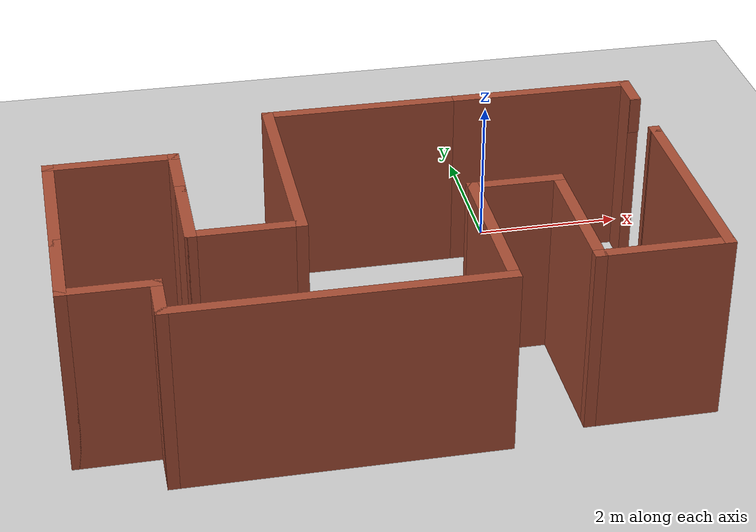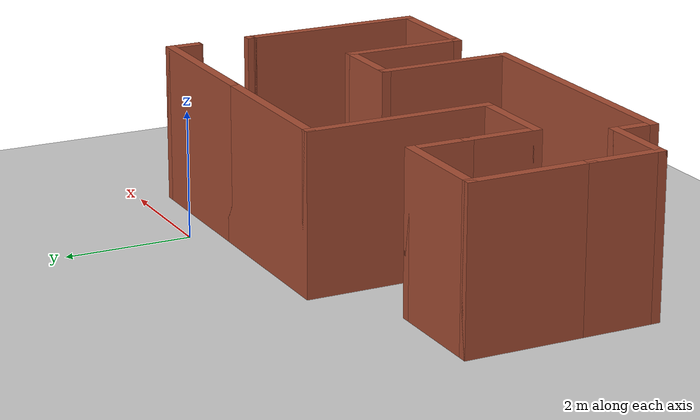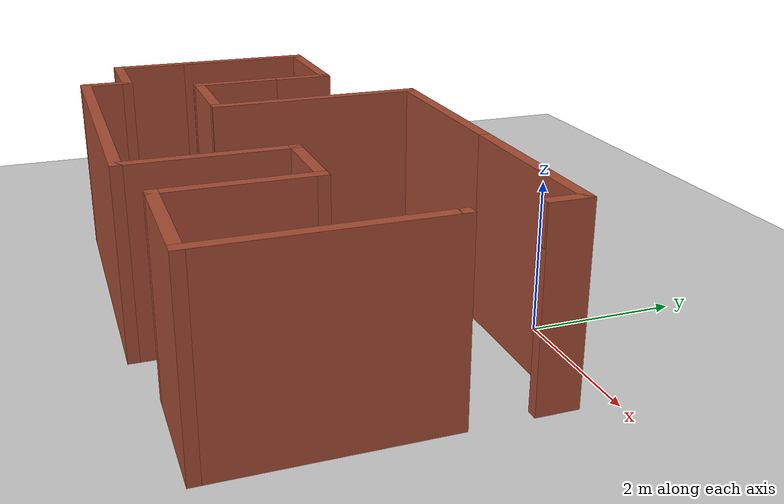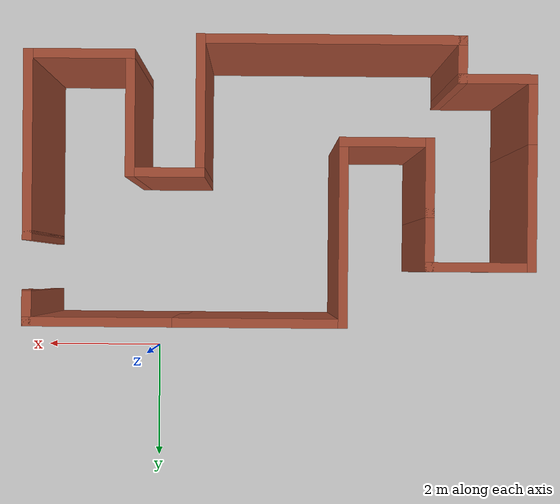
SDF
<sdf version="1.7">
 <world name="default">
  <light name="sun" type="directional">
   <pose>0 0 10 0 -0 0</pose>
   <diffuse>0.8 0.8 0.8 1</diffuse>
   <specular>0.2 0.2 0.2 1</specular>
   <attenuation>
    <range>1000</range>
    <constant>0.9</constant>
    <linear>0.01</linear>
    <quadratic>0.001</quadratic>
   </attenuation>
   <direction>-0.5 0.1 -0.9</direction>
   <spot><inner_angle>0</inner_angle><outer_angle>0</outer_angle><falloff>0</falloff></spot>
  </light>
  <model name="ground_plane">
   <static>1</static>
   <link name="link">
    <collision name="collision">
     <geometry><plane><normal>0 0 1</normal><size>100 100</size></plane></geometry>
     <surface><friction><ode><mu>100</mu><mu2>50</mu2></ode></friction></surface>
    </collision>
    <visual name="visual">
     <cast_shadows>0</cast_shadows>
     <geometry><plane><normal>0 0 1</normal><size>100 100</size></plane></geometry>
     <material>
      <script><uri>file://media/materials/scripts/gazebo.material</uri><name>Gazebo/Grey</name></script>
     </material>
    </visual>
   </link>
  </model>
  <gravity>0 0 -9.8</gravity>
  <magnetic_field>6e-06 2.3e-05 -4.2e-05</magnetic_field>
  <atmosphere type="adiabatic"/>
  <physics type="ode">
   <max_step_size>0.001</max_step_size>
   <real_time_factor>1</real_time_factor>
   <real_time_update_rate>1000</real_time_update_rate>
  </physics>
  <scene><ambient>0.4 0.4 0.4 1</ambient><background>0.7 0.7 0.7 1</background><shadows>1</shadows></scene>
  <spherical_coordinates>
   <surface_model>EARTH_WGS84</surface_model>
   <latitude_deg>0</latitude_deg>
   <longitude_deg>0</longitude_deg>
   <elevation>0</elevation>
   <heading_deg>0</heading_deg>
  </spherical_coordinates>
  <model name="myworld.world">
   <pose>-2.12 -2.5275 0 0 -0 0</pose>
   <link name="Wall_0">
    <collision name="Wall_0_Collision">
     <geometry><box><size>2 0.15 2.5</size></box></geometry>
     <pose>0 0 1.25 0 -0 0</pose>
    </collision>
    <visual name="Wall_0_Visual">
     <pose>0 0 1.25 0 -0 0</pose>
     <geometry><box><size>2 0.15 2.5</size></box></geometry>
     <material>
      <script><uri>file://media/materials/scripts/gazebo.material</uri><name>Gazebo/Bricks</name></script>
      <ambient>1 1 1 1</ambient>
     </material>
     <meta><layer>0</layer></meta>
    </visual>
    <pose>-3.95 0.1725 0 0 -0 1.5708</pose>
   </link>
   <link name="Wall_1">
    <collision name="Wall_1_Collision">
     <geometry><box><size>1.75 0.15 2.5</size></box></geometry>
     <pose>0 0 1.25 0 -0 0</pose>
    </collision>
    <visual name="Wall_1_Visual">
     <pose>0 0 1.25 0 -0 0</pose>
     <geometry><box><size>1.75 0.15 2.5</size></box></geometry>
     <material>
      <script><uri>file://media/materials/scripts/gazebo.material</uri><name>Gazebo/Bricks</name></script>
      <ambient>1 1 1 1</ambient>
     </material>
     <meta><layer>0</layer></meta>
    </visual>
    <pose>-3.15 1.0975 0 0 -0 0</pose>
   </link>
   <link name="Wall_10">
    <collision name="Wall_10_Collision">
     <geometry><box><size>3 0.15 2.5</size></box></geometry>
     <pose>0 0 1.25 0 -0 0</pose>
    </collision>
    <visual name="Wall_10_Visual">
     <pose>0 0 1.25 0 -0 0</pose>
     <geometry><box><size>3 0.15 2.5</size></box></geometry>
     <material>
      <script><uri>file://media/materials/scripts/gazebo.material</uri><name>Gazebo/Bricks</name></script>
      <ambient>1 1 1 1</ambient>
     </material>
     <meta><layer>0</layer></meta>
    </visual>
    <pose>3.95 -0.7775 0 0 -0 -1.5708</pose>
   </link>
   <link name="Wall_11">
    <collision name="Wall_11_Collision">
     <geometry><box><size>1.75 0.15 2.5</size></box></geometry>
     <pose>0 0 1.25 0 -0 0</pose>
    </collision>
    <visual name="Wall_11_Visual">
     <pose>0 0 1.25 0 -0 0</pose>
     <geometry><box><size>1.75 0.15 2.5</size></box></geometry>
     <material>
      <script><uri>file://media/materials/scripts/gazebo.material</uri><name>Gazebo/Bricks</name></script>
      <ambient>1 1 1 1</ambient>
     </material>
     <meta><layer>0</layer></meta>
    </visual>
    <pose>3.15 -2.2025 0 0 -0 3.14159</pose>
   </link>
   <link name="Wall_12">
    <collision name="Wall_12_Collision">
     <geometry><box><size>2 0.15 2.5</size></box></geometry>
     <pose>0 0 1.25 0 -0 0</pose>
    </collision>
    <visual name="Wall_12_Visual">
     <pose>0 0 1.25 0 -0 0</pose>
     <geometry><box><size>2 0.15 2.5</size></box></geometry>
     <material>
      <script><uri>file://media/materials/scripts/gazebo.material</uri><name>Gazebo/Bricks</name></script>
      <ambient>1 1 1 1</ambient>
     </material>
     <meta><layer>0</layer></meta>
    </visual>
    <pose>2.35 -1.2775 0 0 -0 1.5708</pose>
   </link>
   <link name="Wall_13">
    <collision name="Wall_13_Collision">
     <geometry><box><size>1.25 0.15 2.5</size></box></geometry>
     <pose>0 0 1.25 0 -0 0</pose>
    </collision>
    <visual name="Wall_13_Visual">
     <pose>0 0 1.25 0 -0 0</pose>
     <geometry><box><size>1.25 0.15 2.5</size></box></geometry>
     <material>
      <script><uri>file://media/materials/scripts/gazebo.material</uri><name>Gazebo/Bricks</name></script>
      <ambient>1 1 1 1</ambient>
     </material>
     <meta><layer>0</layer></meta>
    </visual>
    <pose>1.8 -0.3525 0 0 -0 3.14159</pose>
   </link>
   <link name="Wall_14">
    <collision name="Wall_14_Collision">
     <geometry><box><size>2.25 0.15 2.5</size></box></geometry>
     <pose>0 0 1.25 0 -0 0</pose>
    </collision>
    <visual name="Wall_14_Visual">
     <pose>0 0 1.25 0 -0 0</pose>
     <geometry><box><size>2.25 0.15 2.5</size></box></geometry>
     <material>
      <script><uri>file://media/materials/scripts/gazebo.material</uri><name>Gazebo/Bricks</name></script>
      <ambient>1 1 1 1</ambient>
     </material>
     <meta><layer>0</layer></meta>
    </visual>
    <pose>1.25 -1.4025 0 0 -0 -1.5708</pose>
   </link>
   <link name="Wall_15">
    <collision name="Wall_15_Collision">
     <geometry><box><size>4.25 0.15 2.5</size></box></geometry>
     <pose>0 0 1.25 0 -0 0</pose>
    </collision>
    <visual name="Wall_15_Visual">
     <pose>0 0 1.25 0 -0 0</pose>
     <geometry><box><size>4.25 0.15 2.5</size></box></geometry>
     <material>
      <script><uri>file://media/materials/scripts/gazebo.material</uri><name>Gazebo/Bricks</name></script>
      <ambient>1 1 1 1</ambient>
     </material>
     <meta><layer>0</layer></meta>
    </visual>
    <pose>-0.8 -2.4525 0 0 -0 3.14159</pose>
   </link>
   <link name="Wall_16">
    <collision name="Wall_16_Collision">
     <geometry><box><size>0.75 0.15 2.5</size></box></geometry>
     <pose>0 0 1.25 0 -0 0</pose>
    </collision>
    <visual name="Wall_16_Visual">
     <pose>0 0 1.25 0 -0 0</pose>
     <geometry><box><size>0.75 0.15 2.5</size></box></geometry>
     <material>
      <script><uri>file://media/materials/scripts/gazebo.material</uri><name>Gazebo/Bricks</name></script>
      <ambient>1 1 1 1</ambient>
     </material>
     <meta><layer>0</layer></meta>
    </visual>
    <pose>-2.85 -2.1525 0 0 -0 1.5708</pose>
   </link>
   <link name="Wall_17">
    <collision name="Wall_17_Collision">
     <geometry><box><size>1.25 0.15 2.5</size></box></geometry>
     <pose>0 0 1.25 0 -0 0</pose>
    </collision>
    <visual name="Wall_17_Visual">
     <pose>0 0 1.25 0 -0 0</pose>
     <geometry><box><size>1.25 0.15 2.5</size></box></geometry>
     <material>
      <script><uri>file://media/materials/scripts/gazebo.material</uri><name>Gazebo/Bricks</name></script>
      <ambient>1 1 1 1</ambient>
     </material>
     <meta><layer>0</layer></meta>
    </visual>
    <pose>-3.4 -1.8525 0 0 -0 3.14159</pose>
   </link>
   <link name="Wall_18">
    <collision name="Wall_18_Collision">
     <geometry><box><size>1.25 0.15 2.5</size></box></geometry>
     <pose>0 0 1.25 0 -0 0</pose>
    </collision>
    <visual name="Wall_18_Visual">
     <pose>0 0 1.25 0 -0 0</pose>
     <geometry><box><size>1.25 0.15 2.5</size></box></geometry>
     <material>
      <script><uri>file://media/materials/scripts/gazebo.material</uri><name>Gazebo/Bricks</name></script>
      <ambient>1 1 1 1</ambient>
     </material>
     <meta><layer>0</layer></meta>
    </visual>
    <pose>-3.95 -1.3025 0 0 -0 1.5708</pose>
   </link>
   <link name="Wall_2">
    <collision name="Wall_2_Collision">
     <geometry><box><size>1 0.15 2.5</size></box></geometry>
     <pose>0 0 1.25 0 -0 0</pose>
    </collision>
    <visual name="Wall_2_Visual">
     <pose>0 0 1.25 0 -0 0</pose>
     <geometry><box><size>1 0.15 2.5</size></box></geometry>
     <material>
      <script><uri>file://media/materials/scripts/gazebo.material</uri><name>Gazebo/Bricks</name></script>
      <ambient>1 1 1 1</ambient>
     </material>
     <meta><layer>0</layer></meta>
    </visual>
    <pose>-2.35 0.6725 0 0 -0 -1.5708</pose>
   </link>
   <link name="Wall_3">
    <collision name="Wall_3_Collision">
     <geometry><box><size>1.25 0.15 2.5</size></box></geometry>
     <pose>0 0 1.25 0 -0 0</pose>
    </collision>
    <visual name="Wall_3_Visual">
     <pose>0 0 1.25 0 -0 0</pose>
     <geometry><box><size>1.25 0.15 2.5</size></box></geometry>
     <material>
      <script><uri>file://media/materials/scripts/gazebo.material</uri><name>Gazebo/Bricks</name></script>
      <ambient>1 1 1 1</ambient>
     </material>
     <meta><layer>0</layer></meta>
    </visual>
    <pose>-2.35 -0.3025 0 0 -0 -1.5708</pose>
   </link>
   <link name="Wall_4">
    <collision name="Wall_4_Collision">
     <geometry><box><size>1.5 0.15 2.5</size></box></geometry>
     <pose>0 0 1.25 0 -0 0</pose>
    </collision>
    <visual name="Wall_4_Visual">
     <pose>0 0 1.25 0 -0 0</pose>
     <geometry><box><size>1.5 0.15 2.5</size></box></geometry>
     <material>
      <script><uri>file://media/materials/scripts/gazebo.material</uri><name>Gazebo/Bricks</name></script>
      <ambient>1 1 1 1</ambient>
     </material>
     <meta><layer>0</layer></meta>
    </visual>
    <pose>-1.675 -0.8525 0 0 -0 0</pose>
   </link>
   <link name="Wall_5">
    <collision name="Wall_5_Collision">
     <geometry><box><size>3 0.15 2.5</size></box></geometry>
     <pose>0 0 1.25 0 -0 0</pose>
    </collision>
    <visual name="Wall_5_Visual">
     <pose>0 0 1.25 0 -0 0</pose>
     <geometry><box><size>3 0.15 2.5</size></box></geometry>
     <material>
      <script><uri>file://media/materials/scripts/gazebo.material</uri><name>Gazebo/Bricks</name></script>
      <ambient>1 1 1 1</ambient>
     </material>
     <meta><layer>0</layer></meta>
    </visual>
    <pose>-1 0.5725 0 0 -0 1.5708</pose>
   </link>
   <link name="Wall_6">
    <collision name="Wall_6_Collision">
     <geometry><box><size>2.75 0.15 2.5</size></box></geometry>
     <pose>0 0 1.25 0 -0 0</pose>
    </collision>
    <visual name="Wall_6_Visual">
     <pose>0 0 1.25 0 -0 0</pose>
     <geometry><box><size>2.75 0.15 2.5</size></box></geometry>
     <material>
      <script><uri>file://media/materials/scripts/gazebo.material</uri><name>Gazebo/Bricks</name></script>
      <ambient>1 1 1 1</ambient>
     </material>
     <meta><layer>0</layer></meta>
    </visual>
    <pose>0.3 1.9975 0 0 -0 0</pose>
   </link>
   <link name="Wall_7">
    <collision name="Wall_7_Collision">
     <geometry><box><size>2.5 0.15 2.5</size></box></geometry>
     <pose>0 0 1.25 0 -0 0</pose>
    </collision>
    <visual name="Wall_7_Visual">
     <pose>0 0 1.25 0 -0 0</pose>
     <geometry><box><size>2.5 0.15 2.5</size></box></geometry>
     <material>
      <script><uri>file://media/materials/scripts/gazebo.material</uri><name>Gazebo/Bricks</name></script>
      <ambient>1 1 1 1</ambient>
     </material>
     <meta><layer>0</layer></meta>
    </visual>
    <pose>2.775 1.9975 0 0 -0 0</pose>
   </link>
   <link name="Wall_8">
    <pose>3.95 1.3225 0 0 -0 -1.5708</pose>
    <visual name="Wall_8_Visual_0">
     <pose>-0.4725 0 1.25 0 -0 0</pose>
     <geometry><box><size>0.555 0.15 2.5</size></box></geometry>
     <material>
      <script><uri>file://media/materials/scripts/gazebo.material</uri><name>Gazebo/Bricks</name></script>
      <ambient>1 1 1 1</ambient>
     </material>
     <meta><layer>0</layer></meta>
    </visual>
    <collision name="Wall_8_Collision_0">
     <geometry><box><size>0.555 0.15 2.5</size></box></geometry>
     <pose>-0.4725 0 1.25 0 -0 0</pose>
    </collision>
    <visual name="Wall_8_Visual_1">
     <pose>0.7275 0 1.25 0 -0 0</pose>
     <geometry><box><size>0.045 0.15 2.5</size></box></geometry>
     <material>
      <script><uri>file://media/materials/scripts/gazebo.material</uri><name>Gazebo/Bricks</name></script>
      <ambient>1 1 1 1</ambient>
     </material>
     <meta><layer>0</layer></meta>
    </visual>
    <collision name="Wall_8_Collision_1">
     <geometry><box><size>0.045 0.15 2.5</size></box></geometry>
     <pose>0.7275 0 1.25 0 -0 0</pose>
    </collision>
    <visual name="Wall_8_Visual_2">
     <pose>0.7375 0 1.25 0 -0 0</pose>
     <geometry><box><size>0.025 0.15 2.5</size></box></geometry>
     <material>
      <script><uri>file://media/materials/scripts/gazebo.material</uri><name>Gazebo/Bricks</name></script>
      <ambient>1 1 1 1</ambient>
     </material>
     <meta><layer>0</layer></meta>
    </visual>
    <collision name="Wall_8_Collision_2">
     <geometry><box><size>0.025 0.15 2.5</size></box></geometry>
     <pose>0.7375 0 1.25 0 -0 0</pose>
    </collision>
    <visual name="Wall_8_Visual_3">
     <pose>-0.185 0 2.25 0 -0 0</pose>
     <geometry><box><size>0.02 0.15 0.5</size></box></geometry>
     <material>
      <script><uri>file://media/materials/scripts/gazebo.material</uri><name>Gazebo/Bricks</name></script>
      <ambient>1 1 1 1</ambient>
     </material>
     <meta><layer>0</layer></meta>
    </visual>
    <collision name="Wall_8_Collision_3">
     <geometry><box><size>0.02 0.15 0.5</size></box></geometry>
     <pose>-0.185 0 2.25 0 -0 0</pose>
    </collision>
   </link>
   <static>1</static>
  </model>
 </world>
</sdf>
